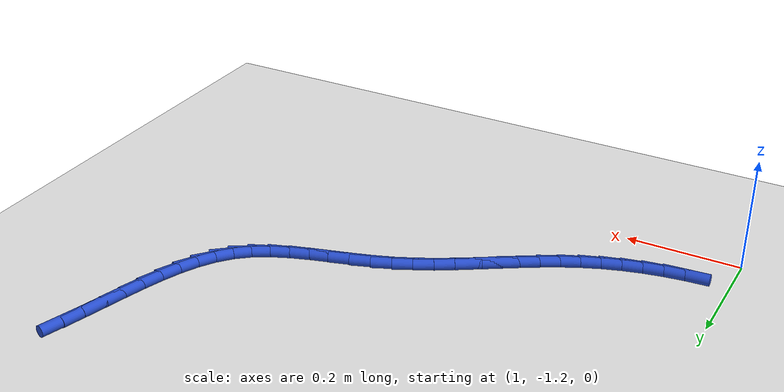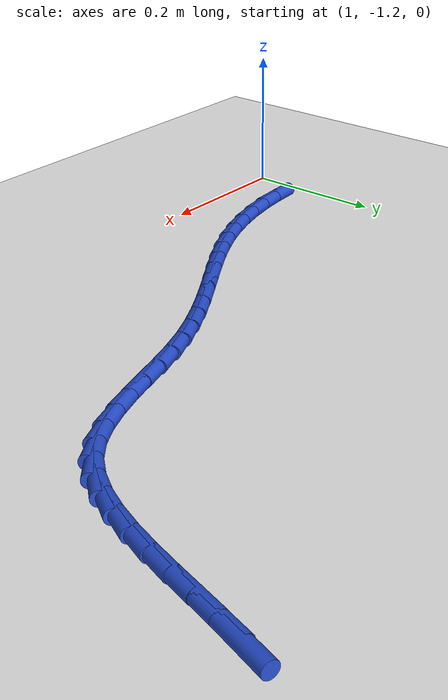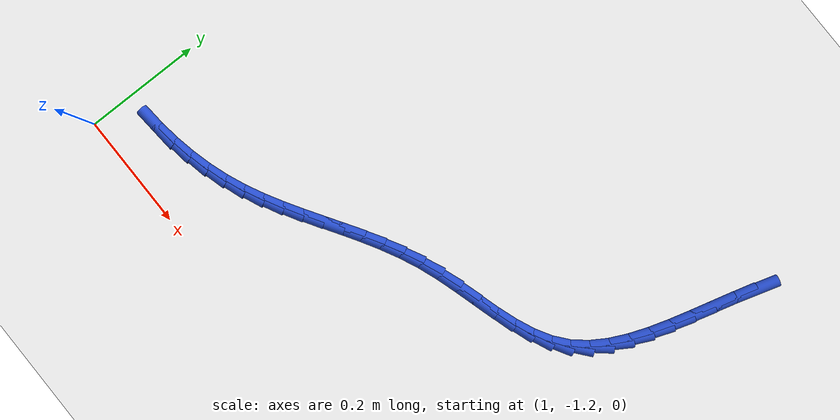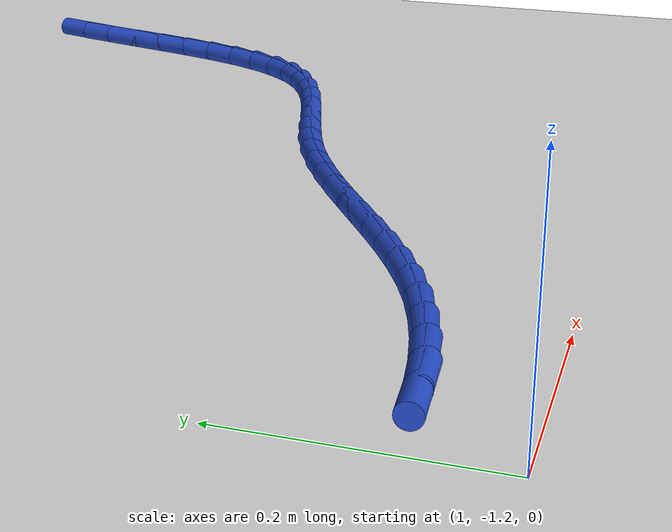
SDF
<sdf version="1.6">
 <world name="default">
  <model name="ground_plane">
   <static>1</static>
   <link name="link">
    <collision name="collision">
     <geometry><plane><normal>0 0 1</normal><size>100 100</size></plane></geometry>
     <surface><friction><ode><mu>100</mu><mu2>50</mu2></ode></friction></surface>
    </collision>
    <visual name="visual">
     <cast_shadows>0</cast_shadows>
     <geometry><plane><normal>0 0 1</normal><size>100 100</size></plane></geometry>
     <material>
      <script><uri>file://media/materials/scripts/gazebo.material</uri><name>Gazebo/WhiteGlow</name></script>
     </material>
    </visual>
   </link>
  </model>
  <model name="line">
   <link name="link_110">
    <pose>1.8801084656160663 -0.5302073999723242 0.01 0 1.57 1.2740127519279658</pose>
    <collision name="collision">
     <geometry><cylinder><radius>0.01</radius><length>0.08</length></cylinder></geometry>
    </collision>
    <visual name="visual">
     <material>
      <script><name>Gazebo/Blue</name><uri>file://media/materials/scripts/gazebo.material</uri></script>
     </material>
     <geometry><cylinder><radius>0.01</radius><length>0.08</length></cylinder></geometry>
    </visual>
   </link>
   <link name="link_111">
    <pose>1.8692868471412505 -0.5655934974483753 0.01 0 1.57 1.2995991411329706</pose>
    <collision name="collision">
     <geometry><cylinder><radius>0.01</radius><length>0.08</length></cylinder></geometry>
    </collision>
    <visual name="visual">
     <material>
      <script><name>Gazebo/Blue</name><uri>file://media/materials/scripts/gazebo.material</uri></script>
     </material>
     <geometry><cylinder><radius>0.01</radius><length>0.08</length></cylinder></geometry>
    </visual>
   </link>
   <link name="link_112">
    <pose>1.8592888260741185 -0.6015514648536322 0.01 0 1.57 1.3057171169303405</pose>
    <collision name="collision">
     <geometry><cylinder><radius>0.01</radius><length>0.08</length></cylinder></geometry>
    </collision>
    <visual name="visual">
     <material>
      <script><name>Gazebo/Blue</name><uri>file://media/materials/scripts/gazebo.material</uri></script>
     </material>
     <geometry><cylinder><radius>0.01</radius><length>0.08</length></cylinder></geometry>
    </visual>
   </link>
   <link name="link_113">
    <pose>1.8495290027920777 -0.6375035390197924 0.01 0 1.57 1.2924502391481953</pose>
    <collision name="collision">
     <geometry><cylinder><radius>0.01</radius><length>0.08</length></cylinder></geometry>
    </collision>
    <visual name="visual">
     <material>
      <script><name>Gazebo/Blue</name><uri>file://media/materials/scripts/gazebo.material</uri></script>
     </material>
     <geometry><cylinder><radius>0.01</radius><length>0.08</length></cylinder></geometry>
    </visual>
   </link>
   <link name="link_114">
    <pose>1.839421966925893 -0.6728719479203565 0.01 0 1.57 1.2586177980003006</pose>
    <collision name="collision">
     <geometry><cylinder><radius>0.01</radius><length>0.08</length></cylinder></geometry>
    </collision>
    <visual name="visual">
     <material>
      <script><name>Gazebo/Blue</name><uri>file://media/materials/scripts/gazebo.material</uri></script>
     </material>
     <geometry><cylinder><radius>0.01</radius><length>0.08</length></cylinder></geometry>
    </visual>
   </link>
   <link name="link_115">
    <pose>1.8283823081063304 -0.7070789195288248 0.01 0 1.57 1.201743254192464</pose>
    <collision name="collision">
     <geometry><cylinder><radius>0.01</radius><length>0.08</length></cylinder></geometry>
    </collision>
    <visual name="visual">
     <material>
      <script><name>Gazebo/Blue</name><uri>file://media/materials/scripts/gazebo.material</uri></script>
     </material>
     <geometry><cylinder><radius>0.01</radius><length>0.08</length></cylinder></geometry>
    </visual>
   </link>
   <link name="link_116">
    <pose>1.8158246159641551 -0.7395466818186982 0.01 0 1.57 1.1182005551663634</pose>
    <collision name="collision">
     <geometry><cylinder><radius>0.01</radius><length>0.08</length></cylinder></geometry>
    </collision>
    <visual name="visual">
     <material>
      <script><name>Gazebo/Blue</name><uri>file://media/materials/scripts/gazebo.material</uri></script>
     </material>
     <geometry><cylinder><radius>0.01</radius><length>0.08</length></cylinder></geometry>
    </visual>
   </link>
   <link name="link_117">
    <pose>1.801163480130133 -0.769697462763478 0.01 0 1.57 1.0039301511460363</pose>
    <collision name="collision">
     <geometry><cylinder><radius>0.01</radius><length>0.08</length></cylinder></geometry>
    </collision>
    <visual name="visual">
     <material>
      <script><name>Gazebo/Blue</name><uri>file://media/materials/scripts/gazebo.material</uri></script>
     </material>
     <geometry><cylinder><radius>0.01</radius><length>0.08</length></cylinder></geometry>
    </visual>
   </link>
   <link name="link_118">
    <pose>1.7838134902350287 -0.7969534903366636 0.01 0 1.57 0.8564203092894024</pose>
    <collision name="collision">
     <geometry><cylinder><radius>0.01</radius><length>0.08</length></cylinder></geometry>
    </collision>
    <visual name="visual">
     <material>
      <script><name>Gazebo/Blue</name><uri>file://media/materials/scripts/gazebo.material</uri></script>
     </material>
     <geometry><cylinder><radius>0.01</radius><length>0.08</length></cylinder></geometry>
    </visual>
   </link>
   <link name="link_119">
    <pose>1.7631892359096073 -0.8207369925117574 0.01 0 1.57 0.6805633590214301</pose>
    <collision name="collision">
     <geometry><cylinder><radius>0.01</radius><length>0.08</length></cylinder></geometry>
    </collision>
    <visual name="visual">
     <material>
      <script><name>Gazebo/Blue</name><uri>file://media/materials/scripts/gazebo.material</uri></script>
     </material>
     <geometry><cylinder><radius>0.01</radius><length>0.08</length></cylinder></geometry>
    </visual>
   </link>
   <link name="link_120">
    <pose>1.7387521979101583 -0.8405210610554693 0.01 0 1.57 0.519381524113216</pose>
    <collision name="collision">
     <geometry><cylinder><radius>0.01</radius><length>0.08</length></cylinder></geometry>
    </collision>
    <visual name="visual">
     <material>
      <script><name>Gazebo/Blue</name><uri>file://media/materials/scripts/gazebo.material</uri></script>
     </material>
     <geometry><cylinder><radius>0.01</radius><length>0.08</length></cylinder></geometry>
    </visual>
   </link>
   <link name="link_121">
    <pose>1.7106893460402763 -0.8565657410111926 0.01 0 1.57 0.4029403243647613</pose>
    <collision name="collision">
     <geometry><cylinder><radius>0.01</radius><length>0.08</length></cylinder></geometry>
    </collision>
    <visual name="visual">
     <material>
      <script><name>Gazebo/Blue</name><uri>file://media/materials/scripts/gazebo.material</uri></script>
     </material>
     <geometry><cylinder><radius>0.01</radius><length>0.08</length></cylinder></geometry>
    </visual>
   </link>
   <link name="link_122">
    <pose>1.679758592776159 -0.8697503909855946 0.01 0 1.57 0.3275241279053274</pose>
    <collision name="collision">
     <geometry><cylinder><radius>0.01</radius><length>0.08</length></cylinder></geometry>
    </collision>
    <visual name="visual">
     <material>
      <script><name>Gazebo/Blue</name><uri>file://media/materials/scripts/gazebo.material</uri></script>
     </material>
     <geometry><cylinder><radius>0.01</radius><length>0.08</length></cylinder></geometry>
    </visual>
   </link>
   <link name="link_123">
    <pose>1.646733275330381 -0.8809711011223358 0.01 0 1.57 0.2874158115791154</pose>
    <collision name="collision">
     <geometry><cylinder><radius>0.01</radius><length>0.08</length></cylinder></geometry>
    </collision>
    <visual name="visual">
     <material>
      <script><name>Gazebo/Blue</name><uri>file://media/materials/scripts/gazebo.material</uri></script>
     </material>
     <geometry><cylinder><radius>0.01</radius><length>0.08</length></cylinder></geometry>
    </visual>
   </link>
   <link name="link_124">
    <pose>1.6123867309155147 -0.891123961565076 0.01 0 1.57 0.2785980351108651</pose>
    <collision name="collision">
     <geometry><cylinder><radius>0.01</radius><length>0.08</length></cylinder></geometry>
    </collision>
    <visual name="visual">
     <material>
      <script><name>Gazebo/Blue</name><uri>file://media/materials/scripts/gazebo.material</uri></script>
     </material>
     <geometry><cylinder><radius>0.01</radius><length>0.08</length></cylinder></geometry>
    </visual>
   </link>
   <link name="link_125">
    <pose>1.5774922967441356 -0.9011050624574749 0.01 0 1.57 0.29950124909616543</pose>
    <collision name="collision">
     <geometry><cylinder><radius>0.01</radius><length>0.08</length></cylinder></geometry>
    </collision>
    <visual name="visual">
     <material>
      <script><name>Gazebo/Blue</name><uri>file://media/materials/scripts/gazebo.material</uri></script>
     </material>
     <geometry><cylinder><radius>0.01</radius><length>0.08</length></cylinder></geometry>
    </visual>
   </link>
   <link name="link_126">
    <pose>1.542823310028816 -0.911810493943194 0.01 0 1.57 0.3507501692902513</pose>
    <collision name="collision">
     <geometry><cylinder><radius>0.01</radius><length>0.08</length></cylinder></geometry>
    </collision>
    <visual name="visual">
     <material>
      <script><name>Gazebo/Blue</name><uri>file://media/materials/scripts/gazebo.material</uri></script>
     </material>
     <geometry><cylinder><radius>0.01</radius><length>0.08</length></cylinder></geometry>
    </visual>
   </link>
   <link name="link_127">
    <pose>1.509149079087562 -0.9241311829708433 0.01 0 1.57 0.41901830809733387</pose>
    <collision name="collision">
     <geometry><cylinder><radius>0.01</radius><length>0.08</length></cylinder></geometry>
    </collision>
    <visual name="visual">
     <material>
      <script><name>Gazebo/Blue</name><uri>file://media/materials/scripts/gazebo.material</uri></script>
     </material>
     <geometry><cylinder><radius>0.01</radius><length>0.08</length></cylinder></geometry>
    </visual>
   </link>
   <link name="link_128">
    <pose>1.4768832386892923 -0.9385022461230792 0.01 0 1.57 0.4767829758397513</pose>
    <collision name="collision">
     <geometry><cylinder><radius>0.01</radius><length>0.08</length></cylinder></geometry>
    </collision>
    <visual name="visual">
     <material>
      <script><name>Gazebo/Blue</name><uri>file://media/materials/scripts/gazebo.material</uri></script>
     </material>
     <geometry><cylinder><radius>0.01</radius><length>0.08</length></cylinder></geometry>
    </visual>
   </link>
   <link name="link_129">
    <pose>1.445810166045255 -0.9545523803925159 0.01 0 1.57 0.5201680574406129</pose>
    <collision name="collision">
     <geometry><cylinder><radius>0.01</radius><length>0.08</length></cylinder></geometry>
    </collision>
    <visual name="visual">
     <material>
      <script><name>Gazebo/Blue</name><uri>file://media/materials/scripts/gazebo.material</uri></script>
     </material>
     <geometry><cylinder><radius>0.01</radius><length>0.08</length></cylinder></geometry>
    </visual>
   </link>
   <link name="link_130">
    <pose>1.415649844979808 -0.9718277599827704 0.01 0 1.57 0.5486027465222861</pose>
    <collision name="collision">
     <geometry><cylinder><radius>0.01</radius><length>0.08</length></cylinder></geometry>
    </collision>
    <visual name="visual">
     <material>
      <script><name>Gazebo/Blue</name><uri>file://media/materials/scripts/gazebo.material</uri></script>
     </material>
     <geometry><cylinder><radius>0.01</radius><length>0.08</length></cylinder></geometry>
    </visual>
   </link>
   <link name="link_131">
    <pose>1.3861222593173095 -0.9898745590974598 0.01 0 1.57 0.5617996232771524</pose>
    <collision name="collision">
     <geometry><cylinder><radius>0.01</radius><length>0.08</length></cylinder></geometry>
    </collision>
    <visual name="visual">
     <material>
      <script><name>Gazebo/Blue</name><uri>file://media/materials/scripts/gazebo.material</uri></script>
     </material>
     <geometry><cylinder><radius>0.01</radius><length>0.08</length></cylinder></geometry>
    </visual>
   </link>
   <link name="link_132">
    <pose>1.3569473928821192 -1.0082389519402015 0.01 0 1.57 0.5595700247293874</pose>
    <collision name="collision">
     <geometry><cylinder><radius>0.01</radius><length>0.08</length></cylinder></geometry>
    </collision>
    <visual name="visual">
     <material>
      <script><name>Gazebo/Blue</name><uri>file://media/materials/scripts/gazebo.material</uri></script>
     </material>
     <geometry><cylinder><radius>0.01</radius><length>0.08</length></cylinder></geometry>
    </visual>
   </link>
   <link name="link_133">
    <pose>1.3278452294985943 -1.026467112714614 0.01 0 1.57 0.5417334612297244</pose>
    <collision name="collision">
     <geometry><cylinder><radius>0.01</radius><length>0.08</length></cylinder></geometry>
    </collision>
    <visual name="visual">
     <material>
      <script><name>Gazebo/Blue</name><uri>file://media/materials/scripts/gazebo.material</uri></script>
     </material>
     <geometry><cylinder><radius>0.01</radius><length>0.08</length></cylinder></geometry>
    </visual>
   </link>
   <link name="link_134">
    <pose>1.2985357529910937 -1.044105215624314 0.01 0 1.57 0.5081349617523698</pose>
    <collision name="collision">
     <geometry><cylinder><radius>0.01</radius><length>0.08</length></cylinder></geometry>
    </collision>
    <visual name="visual">
     <material>
      <script><name>Gazebo/Blue</name><uri>file://media/materials/scripts/gazebo.material</uri></script>
     </material>
     <geometry><cylinder><radius>0.01</radius><length>0.08</length></cylinder></geometry>
    </visual>
   </link>
   <link name="link_135">
    <pose>1.2687389471839756 -1.0606994348729186 0.01 0 1.57 0.4587787381439965</pose>
    <collision name="collision">
     <geometry><cylinder><radius>0.01</radius><length>0.08</length></cylinder></geometry>
    </collision>
    <visual name="visual">
     <material>
      <script><name>Gazebo/Blue</name><uri>file://media/materials/scripts/gazebo.material</uri></script>
     </material>
     <geometry><cylinder><radius>0.01</radius><length>0.08</length></cylinder></geometry>
    </visual>
   </link>
   <link name="link_136">
    <pose>1.2381747959015994 -1.0757959446640464 0.01 0 1.57 0.3945503376022822</pose>
    <collision name="collision">
     <geometry><cylinder><radius>0.01</radius><length>0.08</length></cylinder></geometry>
    </collision>
    <visual name="visual">
     <material>
      <script><name>Gazebo/Blue</name><uri>file://media/materials/scripts/gazebo.material</uri></script>
     </material>
     <geometry><cylinder><radius>0.01</radius><length>0.08</length></cylinder></geometry>
    </visual>
   </link>
   <link name="link_137">
    <pose>1.2065753148536098 -1.0889534664713358 0.01 0 1.57 0.325259442503785</pose>
    <collision name="collision">
     <geometry><cylinder><radius>0.01</radius><length>0.08</length></cylinder></geometry>
    </collision>
    <visual name="visual">
     <material>
      <script><name>Gazebo/Blue</name><uri>file://media/materials/scripts/gazebo.material</uri></script>
     </material>
     <geometry><cylinder><radius>0.01</radius><length>0.08</length></cylinder></geometry>
    </visual>
   </link>
   <link name="link_138">
    <pose>1.1739035034670677 -1.0999715996528177 0.01 0 1.57 0.2590043102080824</pose>
    <collision name="collision">
     <geometry><cylinder><radius>0.01</radius><length>0.08</length></cylinder></geometry>
    </collision>
    <visual name="visual">
     <material>
      <script><name>Gazebo/Blue</name><uri>file://media/materials/scripts/gazebo.material</uri></script>
     </material>
     <geometry><cylinder><radius>0.01</radius><length>0.08</length></cylinder></geometry>
    </visual>
   </link>
   <link name="link_139">
    <pose>1.140330468897 -1.1088669655704895 0.01 0 1.57 0.1956521347929842</pose>
    <collision name="collision">
     <geometry><cylinder><radius>0.01</radius><length>0.08</length></cylinder></geometry>
    </collision>
    <visual name="visual">
     <material>
      <script><name>Gazebo/Blue</name><uri>file://media/materials/scripts/gazebo.material</uri></script>
     </material>
     <geometry><cylinder><radius>0.01</radius><length>0.08</length></cylinder></geometry>
    </visual>
   </link>
   <link name="link_140">
    <pose>1.106034759380495 -1.1156639454065027 0.01 0 1.57 0.13474110842896436</pose>
    <collision name="collision">
     <geometry><cylinder><radius>0.01</radius><length>0.08</length></cylinder></geometry>
    </collision>
    <visual name="visual">
     <material>
      <script><name>Gazebo/Blue</name><uri>file://media/materials/scripts/gazebo.material</uri></script>
     </material>
     <geometry><cylinder><radius>0.01</radius><length>0.08</length></cylinder></geometry>
    </visual>
   </link>
   <link name="link_141">
    <pose>1.0711949231546436 -1.1203869203430077 0.01 0 1.57 0.07579034495434622</pose>
    <collision name="collision">
     <geometry><cylinder><radius>0.01</radius><length>0.08</length></cylinder></geometry>
    </collision>
    <visual name="visual">
     <material>
      <script><name>Gazebo/Blue</name><uri>file://media/materials/scripts/gazebo.material</uri></script>
     </material>
     <geometry><cylinder><radius>0.01</radius><length>0.08</length></cylinder></geometry>
    </visual>
   </link>
  </model>
 </world>
</sdf>
